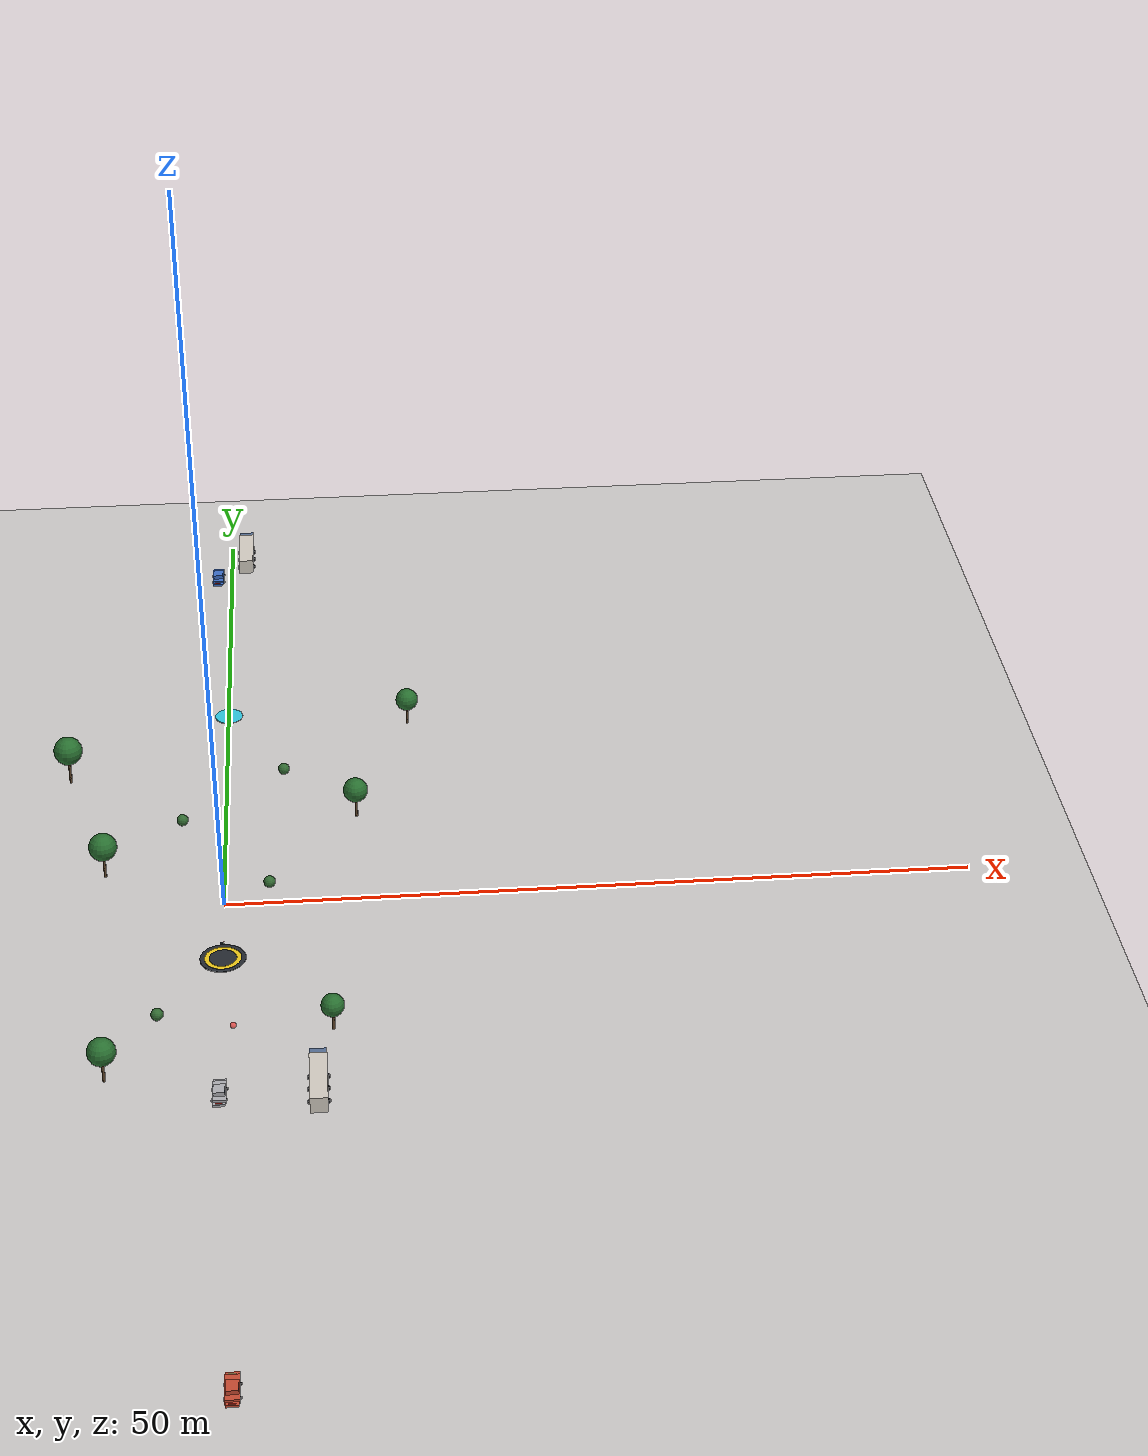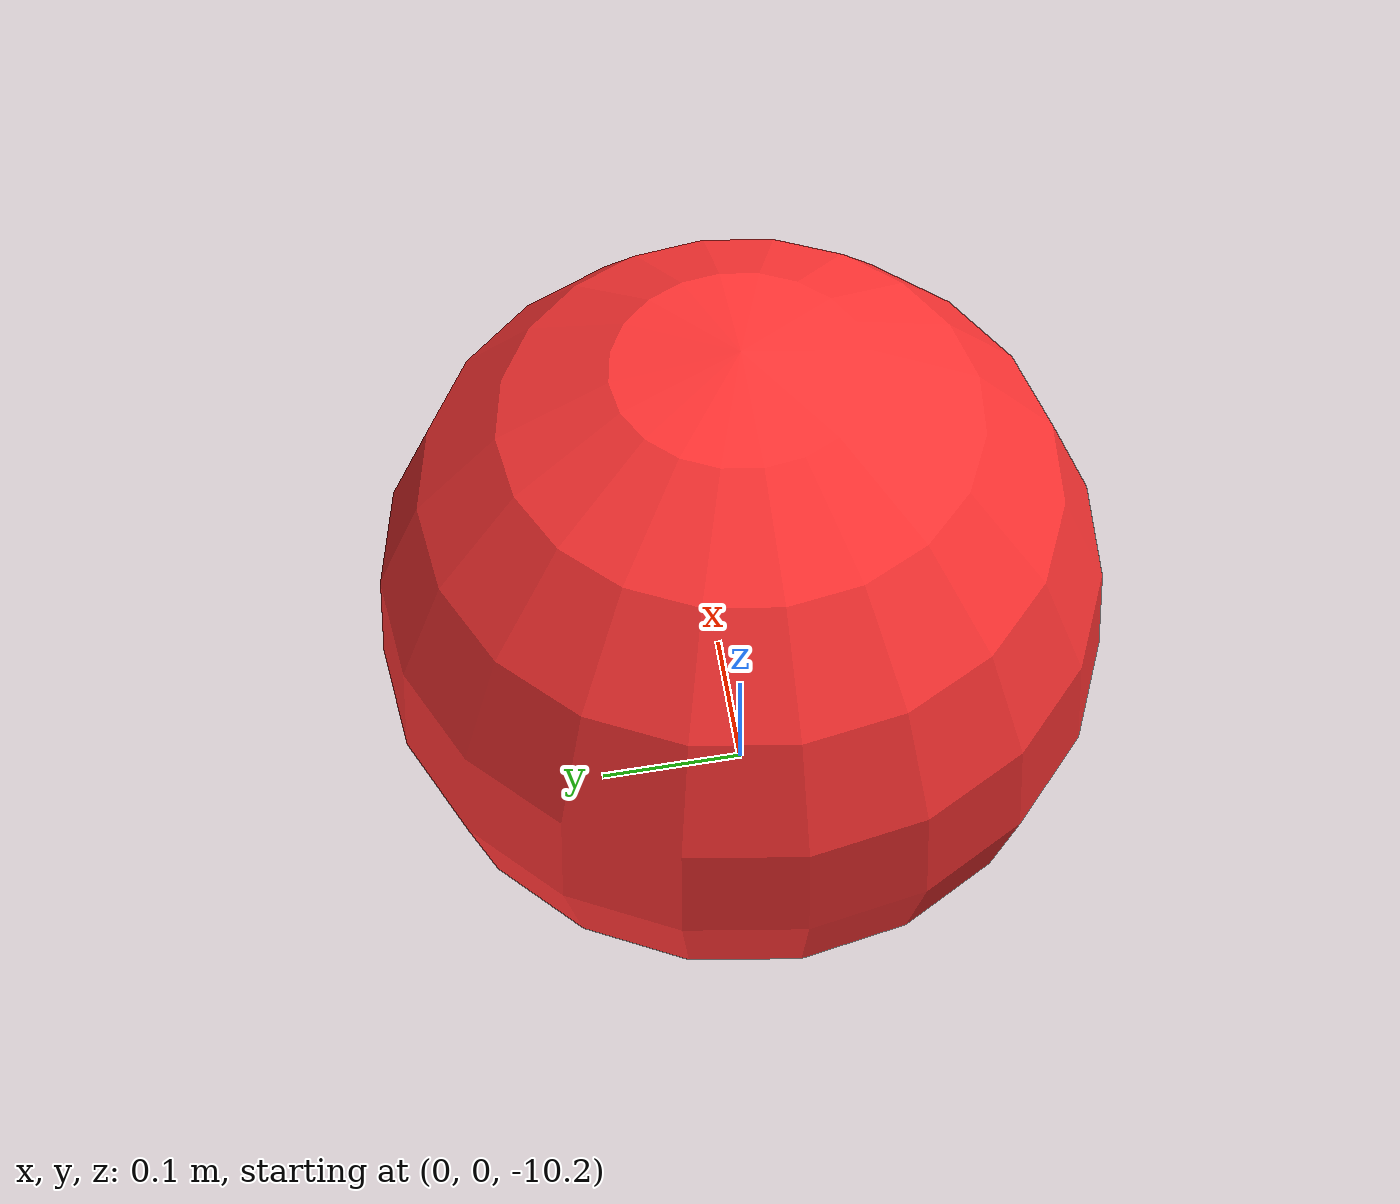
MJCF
<mujoco model="paper_drone_open_field_v1">
  <option timestep="1e-4" gravity="0 0 -9.81" integrator="implicitfast"/>
  <visual>
    <headlight ambient="0.4 0.4 0.4" diffuse="0.6 0.6 0.6" specular="0.12 0.12 0.12"/>
    <global offwidth="1920" offheight="1080"/>
    <map znear="0.01" zfar="120"/>
  </visual>
  <asset>
    <texture type="skybox" builtin="gradient" rgb1="0.5 0.6 0.78" rgb2="0.92 0.93 0.96" width="256" height="256"/>
    <texture name="groundtex" type="2d" builtin="checker" rgb1="0.28 0.42 0.24" rgb2="0.34 0.48 0.28" width="200" height="200"/>
    <material name="groundmat" texture="groundtex" texrepeat="14 14" specular="0.05"/>
  </asset>
  <worldbody>
    <light directional="true" castshadow="true" pos="6 6 14" dir="0 0 -1"/>
    <light directional="true" pos="-8 -6 10" dir="0.3 0.2 -1" diffuse="0.25 0.27 0.3"/>
    <geom name="floor" type="plane" size="60 60 0.1" material="groundmat" rgba="0.7 0.75 0.7 1" friction="1.0 0.5 0.5"/>
    <geom name="pad_base" type="cylinder" size="1.5 0.02" pos="0 -6 0.02" rgba="0.15 0.17 0.2 1" friction="1 0.5 0.5"/>
    <geom name="pad_ring" type="cylinder" size="1.2 0.025" pos="0 -6 0.026" rgba="0.95 0.8 0.1 1" contype="0" conaffinity="0"/>
    <geom name="pad_inner" type="cylinder" size="0.9 0.028" pos="0 -6 0.028" rgba="0.15 0.17 0.2 1" contype="0" conaffinity="0"/>
    <geom name="land_ring" type="cylinder" size="1.0 0.025" pos="0 24 0.026" rgba="0.2 0.8 0.9 1" contype="0" conaffinity="0"/>
    <geom name="tree_0_trunk" type="cylinder" size="0.09 1.6" pos="-8 4 1.6" rgba="0.36 0.26 0.16 1" friction="1 0.5 0.5"/>
    <geom name="tree_0_top" type="sphere" size="0.95" pos="-8 4 2.4075" rgba="0.16 0.44 0.19 1" friction="1 0.5 0.5"/>
    <geom name="tree_1_trunk" type="cylinder" size="0.09 1.4" pos="9 10 1.4" rgba="0.36 0.26 0.16 1" friction="1 0.5 0.5"/>
    <geom name="tree_1_top" type="sphere" size="0.85" pos="9 10 2.1224999999999996" rgba="0.16 0.44 0.19 1" friction="1 0.5 0.5"/>
    <geom name="tree_2_trunk" type="cylinder" size="0.09 1.8" pos="-11 16 1.8" rgba="0.36 0.26 0.16 1" friction="1 0.5 0.5"/>
    <geom name="tree_2_top" type="sphere" size="1.0" pos="-11 16 2.65" rgba="0.16 0.44 0.19 1" friction="1 0.5 0.5"/>
    <geom name="tree_3_trunk" type="cylinder" size="0.09 1.2" pos="7 -14 1.2" rgba="0.36 0.26 0.16 1" friction="1 0.5 0.5"/>
    <geom name="tree_3_top" type="sphere" size="0.75" pos="7 -14 1.8375" rgba="0.16 0.44 0.19 1" friction="1 0.5 0.5"/>
    <geom name="tree_4_trunk" type="cylinder" size="0.09 1.5" pos="-7 -18 1.5" rgba="0.36 0.26 0.16 1" friction="1 0.5 0.5"/>
    <geom name="tree_4_top" type="sphere" size="0.9" pos="-7 -18 2.265" rgba="0.16 0.44 0.19 1" friction="1 0.5 0.5"/>
    <geom name="tree_5_trunk" type="cylinder" size="0.09 1.3" pos="13 22 1.3" rgba="0.36 0.26 0.16 1" friction="1 0.5 0.5"/>
    <geom name="tree_5_top" type="sphere" size="0.8" pos="13 22 1.98" rgba="0.16 0.44 0.19 1" friction="1 0.5 0.5"/>
    <geom name="bush_0" type="sphere" size="0.4" pos="3 2 0.32" rgba="0.2 0.42 0.2 1" contype="0" conaffinity="0"/>
    <geom name="bush_1" type="sphere" size="0.4" pos="-3 10 0.32" rgba="0.2 0.42 0.2 1" contype="0" conaffinity="0"/>
    <geom name="bush_2" type="sphere" size="0.4" pos="4 16 0.32" rgba="0.2 0.42 0.2 1" contype="0" conaffinity="0"/>
    <geom name="bush_3" type="sphere" size="0.4" pos="-4 -12 0.32" rgba="0.2 0.42 0.2 1" contype="0" conaffinity="0"/>
  <body name="car_1" pos="0 -20 0">
    <freejoint name="car_1_j"/>
    <geom name="car_1" type="box" size="0.42 0.95 0.16" pos="0 0 0.25" rgba="0.7 0.7 0.72 1" euler="0 0 0" friction="1 0.5 0.5"/>
    <geom name="car_1_hood" type="box" size="0.378 0.209 0.08" pos="0 1.05 0.194" rgba="0.7 0.7 0.72 1" euler="0 0 0" contype="0" conaffinity="0" friction="1 0.5 0.5"/>
    <geom name="car_1_trunk" type="box" size="0.378 0.17099999999999999 0.08" pos="0 -1.03 0.194" rgba="0.7 0.7 0.72 1" euler="0 0 0" contype="0" conaffinity="0" friction="1 0.5 0.5"/>
    <geom name="car_1_cabin" type="box" size="0.36 0.42 0.14" pos="0 -0.1425 0.55" rgba="0.7 0.7 0.72 1" euler="0 0 0" contype="0" conaffinity="0" friction="1 0.5 0.5"/>
    <geom name="car_1_glass" type="box" size="0.36719999999999997 0.336 0.07700000000000001" pos="0 -0.1425 0.543" rgba="0.15 0.2 0.28 0.85" euler="0 0 0" contype="0" conaffinity="0" friction="1 0.5 0.5"/>
    <geom name="car_1_w0" type="cylinder" size="0.09 0.06" pos="0.42 0.5225 0.09" rgba="0.08 0.08 0.09 1" euler="90 0 0" contype="0" conaffinity="0" friction="1 0.5 0.5"/>
    <geom name="car_1_w1" type="cylinder" size="0.09 0.06" pos="0.42 -0.5225 0.09" rgba="0.08 0.08 0.09 1" euler="90 0 0" contype="0" conaffinity="0" friction="1 0.5 0.5"/>
    <geom name="car_1_w2" type="cylinder" size="0.09 0.06" pos="-0.42 0.5225 0.09" rgba="0.08 0.08 0.09 1" euler="90 0 0" contype="0" conaffinity="0" friction="1 0.5 0.5"/>
    <geom name="car_1_w3" type="cylinder" size="0.09 0.06" pos="-0.42 -0.5225 0.09" rgba="0.08 0.08 0.09 1" euler="90 0 0" contype="0" conaffinity="0" friction="1 0.5 0.5"/>
    <geom name="car_1_hl" type="box" size="0.21 0.04 0.04" pos="0 1.1099999999999999 0.25" rgba="1 0.95 0.6 1" contype="0" conaffinity="0" friction="1 0.5 0.5"/>
    <geom name="car_1_tl" type="box" size="0.21 0.04 0.04" pos="0 -1.1099999999999999 0.25" rgba="0.9 0.15 0.1 1" contype="0" conaffinity="0" friction="1 0.5 0.5"/>
  </body>
  <body name="truck_1" pos="6 -20 0">
    <freejoint name="truck_1_j"/>
    <geom name="truck_1" type="box" size="0.55 2.1999999999999997 0.55" pos="0 -0.075 0.68" rgba="0.85 0.82 0.78 1" euler="0 0 0" friction="1 0.5 0.5"/>
    <geom name="truck_1_cab" type="box" size="0.52 0.5 0.5" pos="0 2.17 0.63" rgba="0.35 0.45 0.6 1" euler="0 0 0" contype="0" conaffinity="0" friction="1 0.5 0.5"/>
    <geom name="truck_1_cabglass" type="box" size="0.468 0.15 0.275" pos="0 2.275 0.755" rgba="0.15 0.2 0.28 0.85" euler="0 0 0" contype="0" conaffinity="0" friction="1 0.5 0.5"/>
    <geom name="truck_1_box" type="box" size="0.539 1.55 0.528" pos="0 -0.175 0.68" rgba="0.85 0.82 0.78 1" euler="0 0 0" contype="0" conaffinity="0" friction="1 0.5 0.5"/>
    <geom name="truck_1_rib0" type="box" size="0.55 0.015 0.12" pos="0 -1.075 0.68" rgba="0.35 0.45 0.6 1" euler="0 0 0" contype="0" conaffinity="0" friction="1 0.5 0.5"/>
    <geom name="truck_1_rib1" type="box" size="0.55 0.015 0.12" pos="0 -0.175 0.68" rgba="0.35 0.45 0.6 1" euler="0 0 0" contype="0" conaffinity="0" friction="1 0.5 0.5"/>
    <geom name="truck_1_rib2" type="box" size="0.55 0.015 0.12" pos="0 0.7250000000000001 0.68" rgba="0.35 0.45 0.6 1" euler="0 0 0" contype="0" conaffinity="0" friction="1 0.5 0.5"/>
    <geom name="truck_1_w0r" type="cylinder" size="0.13 0.08" pos="0.5700000000000001 1.1625 0.13" rgba="0.08 0.08 0.09 1" euler="90 0 0" contype="0" conaffinity="0" friction="1 0.5 0.5"/>
    <geom name="truck_1_w0l" type="cylinder" size="0.13 0.08" pos="-0.5700000000000001 1.1625 0.13" rgba="0.08 0.08 0.09 1" euler="90 0 0" contype="0" conaffinity="0" friction="1 0.5 0.5"/>
    <geom name="truck_1_w1r" type="cylinder" size="0.13 0.08" pos="0.5700000000000001 0.0 0.13" rgba="0.08 0.08 0.09 1" euler="90 0 0" contype="0" conaffinity="0" friction="1 0.5 0.5"/>
    <geom name="truck_1_w1l" type="cylinder" size="0.13 0.08" pos="-0.5700000000000001 0.0 0.13" rgba="0.08 0.08 0.09 1" euler="90 0 0" contype="0" conaffinity="0" friction="1 0.5 0.5"/>
    <geom name="truck_1_w2r" type="cylinder" size="0.13 0.08" pos="0.5700000000000001 -1.2400000000000002 0.13" rgba="0.08 0.08 0.09 1" euler="90 0 0" contype="0" conaffinity="0" friction="1 0.5 0.5"/>
    <geom name="truck_1_w2l" type="cylinder" size="0.13 0.08" pos="-0.5700000000000001 -1.2400000000000002 0.13" rgba="0.08 0.08 0.09 1" euler="90 0 0" contype="0" conaffinity="0" friction="1 0.5 0.5"/>
    <geom name="truck_1_hl" type="box" size="0.08 0.04 0.05" pos="0 2.5999999999999996 0.48" rgba="1 0.95 0.6 1" contype="0" conaffinity="0" friction="1 0.5 0.5"/>
  </body>
  <body name="car_m1" pos="1.1 -45 0">
    <freejoint name="car_m1_j"/>
    <geom name="car_m1" type="box" size="0.42 0.95 0.16" pos="0 0 0.25" rgba="0.8 0.3 0.2 1" euler="0 0 0" friction="1 0.5 0.5"/>
    <geom name="car_m1_hood" type="box" size="0.378 0.209 0.08" pos="0 1.05 0.194" rgba="0.8 0.3 0.2 1" euler="0 0 0" contype="0" conaffinity="0" friction="1 0.5 0.5"/>
    <geom name="car_m1_trunk" type="box" size="0.378 0.17099999999999999 0.08" pos="0 -1.03 0.194" rgba="0.8 0.3 0.2 1" euler="0 0 0" contype="0" conaffinity="0" friction="1 0.5 0.5"/>
    <geom name="car_m1_cabin" type="box" size="0.36 0.42 0.14" pos="0 -0.1425 0.55" rgba="0.8 0.3 0.2 1" euler="0 0 0" contype="0" conaffinity="0" friction="1 0.5 0.5"/>
    <geom name="car_m1_glass" type="box" size="0.36719999999999997 0.336 0.07700000000000001" pos="0 -0.1425 0.543" rgba="0.15 0.2 0.28 0.85" euler="0 0 0" contype="0" conaffinity="0" friction="1 0.5 0.5"/>
    <geom name="car_m1_w0" type="cylinder" size="0.09 0.06" pos="0.42 0.5225 0.09" rgba="0.08 0.08 0.09 1" euler="90 0 0" contype="0" conaffinity="0" friction="1 0.5 0.5"/>
    <geom name="car_m1_w1" type="cylinder" size="0.09 0.06" pos="0.42 -0.5225 0.09" rgba="0.08 0.08 0.09 1" euler="90 0 0" contype="0" conaffinity="0" friction="1 0.5 0.5"/>
    <geom name="car_m1_w2" type="cylinder" size="0.09 0.06" pos="-0.42 0.5225 0.09" rgba="0.08 0.08 0.09 1" euler="90 0 0" contype="0" conaffinity="0" friction="1 0.5 0.5"/>
    <geom name="car_m1_w3" type="cylinder" size="0.09 0.06" pos="-0.42 -0.5225 0.09" rgba="0.08 0.08 0.09 1" euler="90 0 0" contype="0" conaffinity="0" friction="1 0.5 0.5"/>
    <geom name="car_m1_hl" type="box" size="0.21 0.04 0.04" pos="0 1.1099999999999999 0.25" rgba="1 0.95 0.6 1" contype="0" conaffinity="0" friction="1 0.5 0.5"/>
    <geom name="car_m1_tl" type="box" size="0.21 0.04 0.04" pos="0 -1.1099999999999999 0.25" rgba="0.9 0.15 0.1 1" contype="0" conaffinity="0" friction="1 0.5 0.5"/>
  </body>
  <body name="car_m2" pos="-1.1 45 0">
    <freejoint name="car_m2_j"/>
    <geom name="car_m2" type="box" size="0.42 0.95 0.16" pos="0 0 0.25" rgba="0.25 0.45 0.8 1" euler="0 0 180" friction="1 0.5 0.5"/>
    <geom name="car_m2_hood" type="box" size="0.378 0.209 0.08" pos="0 1.05 0.194" rgba="0.25 0.45 0.8 1" euler="0 0 180" contype="0" conaffinity="0" friction="1 0.5 0.5"/>
    <geom name="car_m2_trunk" type="box" size="0.378 0.17099999999999999 0.08" pos="0 -1.03 0.194" rgba="0.25 0.45 0.8 1" euler="0 0 180" contype="0" conaffinity="0" friction="1 0.5 0.5"/>
    <geom name="car_m2_cabin" type="box" size="0.36 0.42 0.14" pos="0 -0.1425 0.55" rgba="0.25 0.45 0.8 1" euler="0 0 180" contype="0" conaffinity="0" friction="1 0.5 0.5"/>
    <geom name="car_m2_glass" type="box" size="0.36719999999999997 0.336 0.07700000000000001" pos="0 -0.1425 0.543" rgba="0.15 0.2 0.28 0.85" euler="0 0 180" contype="0" conaffinity="0" friction="1 0.5 0.5"/>
    <geom name="car_m2_w0" type="cylinder" size="0.09 0.06" pos="0.42 0.5225 0.09" rgba="0.08 0.08 0.09 1" euler="90 0 0" contype="0" conaffinity="0" friction="1 0.5 0.5"/>
    <geom name="car_m2_w1" type="cylinder" size="0.09 0.06" pos="0.42 -0.5225 0.09" rgba="0.08 0.08 0.09 1" euler="90 0 0" contype="0" conaffinity="0" friction="1 0.5 0.5"/>
    <geom name="car_m2_w2" type="cylinder" size="0.09 0.06" pos="-0.42 0.5225 0.09" rgba="0.08 0.08 0.09 1" euler="90 0 0" contype="0" conaffinity="0" friction="1 0.5 0.5"/>
    <geom name="car_m2_w3" type="cylinder" size="0.09 0.06" pos="-0.42 -0.5225 0.09" rgba="0.08 0.08 0.09 1" euler="90 0 0" contype="0" conaffinity="0" friction="1 0.5 0.5"/>
    <geom name="car_m2_hl" type="box" size="0.21 0.04 0.04" pos="0 1.1099999999999999 0.25" rgba="1 0.95 0.6 1" contype="0" conaffinity="0" friction="1 0.5 0.5"/>
    <geom name="car_m2_tl" type="box" size="0.21 0.04 0.04" pos="0 -1.1099999999999999 0.25" rgba="0.9 0.15 0.1 1" contype="0" conaffinity="0" friction="1 0.5 0.5"/>
  </body>
  <body name="truck_m1" pos="1.1 48 0">
    <freejoint name="truck_m1_j"/>
    <geom name="truck_m1" type="box" size="0.55 2.1999999999999997 0.55" pos="0 -0.075 0.68" rgba="0.85 0.82 0.78 1" euler="0 0 0" friction="1 0.5 0.5"/>
    <geom name="truck_m1_cab" type="box" size="0.52 0.5 0.5" pos="0 2.17 0.63" rgba="0.35 0.45 0.6 1" euler="0 0 0" contype="0" conaffinity="0" friction="1 0.5 0.5"/>
    <geom name="truck_m1_cabglass" type="box" size="0.468 0.15 0.275" pos="0 2.275 0.755" rgba="0.15 0.2 0.28 0.85" euler="0 0 0" contype="0" conaffinity="0" friction="1 0.5 0.5"/>
    <geom name="truck_m1_box" type="box" size="0.539 1.55 0.528" pos="0 -0.175 0.68" rgba="0.85 0.82 0.78 1" euler="0 0 0" contype="0" conaffinity="0" friction="1 0.5 0.5"/>
    <geom name="truck_m1_rib0" type="box" size="0.55 0.015 0.12" pos="0 -1.075 0.68" rgba="0.35 0.45 0.6 1" euler="0 0 0" contype="0" conaffinity="0" friction="1 0.5 0.5"/>
    <geom name="truck_m1_rib1" type="box" size="0.55 0.015 0.12" pos="0 -0.175 0.68" rgba="0.35 0.45 0.6 1" euler="0 0 0" contype="0" conaffinity="0" friction="1 0.5 0.5"/>
    <geom name="truck_m1_rib2" type="box" size="0.55 0.015 0.12" pos="0 0.7250000000000001 0.68" rgba="0.35 0.45 0.6 1" euler="0 0 0" contype="0" conaffinity="0" friction="1 0.5 0.5"/>
    <geom name="truck_m1_w0r" type="cylinder" size="0.13 0.08" pos="0.5700000000000001 1.1625 0.13" rgba="0.08 0.08 0.09 1" euler="90 0 0" contype="0" conaffinity="0" friction="1 0.5 0.5"/>
    <geom name="truck_m1_w0l" type="cylinder" size="0.13 0.08" pos="-0.5700000000000001 1.1625 0.13" rgba="0.08 0.08 0.09 1" euler="90 0 0" contype="0" conaffinity="0" friction="1 0.5 0.5"/>
    <geom name="truck_m1_w1r" type="cylinder" size="0.13 0.08" pos="0.5700000000000001 0.0 0.13" rgba="0.08 0.08 0.09 1" euler="90 0 0" contype="0" conaffinity="0" friction="1 0.5 0.5"/>
    <geom name="truck_m1_w1l" type="cylinder" size="0.13 0.08" pos="-0.5700000000000001 0.0 0.13" rgba="0.08 0.08 0.09 1" euler="90 0 0" contype="0" conaffinity="0" friction="1 0.5 0.5"/>
    <geom name="truck_m1_w2r" type="cylinder" size="0.13 0.08" pos="0.5700000000000001 -1.2400000000000002 0.13" rgba="0.08 0.08 0.09 1" euler="90 0 0" contype="0" conaffinity="0" friction="1 0.5 0.5"/>
    <geom name="truck_m1_w2l" type="cylinder" size="0.13 0.08" pos="-0.5700000000000001 -1.2400000000000002 0.13" rgba="0.08 0.08 0.09 1" euler="90 0 0" contype="0" conaffinity="0" friction="1 0.5 0.5"/>
    <geom name="truck_m1_hl" type="box" size="0.08 0.04 0.05" pos="0 2.5999999999999996 0.48" rgba="1 0.95 0.6 1" contype="0" conaffinity="0" friction="1 0.5 0.5"/>
  </body>

    <!-- the exact paper drone (mass/inertia = benchmark values) -->
    <body name="quadrotor" pos="0 -6 1.2">
      <freejoint name="root"/>
      <inertial pos="0 0 0" mass="0.2" diaginertia="6.5e-4 6.5e-4 1.2e-3"/>
      <geom name="frame" type="box" size="0.17 0.17 0.015" group="3" friction="0.8 0.5 0.5"/>
      <geom name="shell" type="ellipsoid" size="0.085 0.085 0.028" pos="0 0 0.018" rgba="0.22 0.24 0.28 1" contype="0" conaffinity="0"/>
      <geom name="plate" type="cylinder" size="0.09 0.008" pos="0 0 -0.004" rgba="0.15 0.16 0.18 1" contype="0" conaffinity="0"/>
      <geom name="arm1" type="box" size="0.075 0.007 0.005" euler="0 0 45" pos="0.053033 0.053033 0" rgba="0.28 0.3 0.34 1" contype="0" conaffinity="0"/>
      <geom name="arm2" type="box" size="0.075 0.007 0.005" euler="0 0 -45" pos="-0.053033 -0.053033 0" rgba="0.28 0.3 0.34 1" contype="0" conaffinity="0"/>
      <geom name="arm3" type="box" size="0.075 0.007 0.005" euler="0 0 -45" pos="0.053033 -0.053033 0" rgba="0.28 0.3 0.34 1" contype="0" conaffinity="0"/>
      <geom name="arm4" type="box" size="0.075 0.007 0.005" euler="0 0 45" pos="-0.053033 0.053033 0" rgba="0.28 0.3 0.34 1" contype="0" conaffinity="0"/>
      <geom name="cam" type="box" size="0.014 0.01 0.008" pos="0.098 0 0.02" rgba="0.1 0.1 0.1 1" contype="0" conaffinity="0"/>
      <geom name="lens" type="cylinder" size="0.004 0.006" euler="0 90 0" pos="0.113 0 0.02" rgba="0.05 0.08 0.12 1" contype="0" conaffinity="0"/>
      <geom name="led" type="sphere" size="0.006" pos="-0.095 0 0.02" rgba="1 0.1 0.1 1" contype="0" conaffinity="0"/>
      <geom name="mount1" type="cylinder" size="0.011 0.012" pos="0.106066 0.106066 0.014" rgba="0.18 0.18 0.2 1" contype="0" conaffinity="0"/>
      <geom name="mount2" type="cylinder" size="0.011 0.012" pos="-0.106066 -0.106066 0.014" rgba="0.18 0.18 0.2 1" contype="0" conaffinity="0"/>
      <geom name="mount3" type="cylinder" size="0.011 0.012" pos="0.106066 -0.106066 0.014" rgba="0.18 0.18 0.2 1" contype="0" conaffinity="0"/>
      <geom name="mount4" type="cylinder" size="0.011 0.012" pos="-0.106066 0.106066 0.014" rgba="0.18 0.18 0.2 1" contype="0" conaffinity="0"/>
      <geom name="prop1" type="cylinder" size="0.045 0.0012" pos="0.106066 0.106066 0.03" rgba="0.9 0.2 0.2 0.32" contype="0" conaffinity="0"/>
      <geom name="prop2" type="cylinder" size="0.045 0.0012" pos="-0.106066 -0.106066 0.03" rgba="0.2 0.25 0.9 0.32" contype="0" conaffinity="0"/>
      <geom name="prop3" type="cylinder" size="0.045 0.0012" pos="0.106066 -0.106066 0.03" rgba="0.2 0.8 0.25 0.32" contype="0" conaffinity="0"/>
      <geom name="prop4" type="cylinder" size="0.045 0.0012" pos="-0.106066 0.106066 0.03" rgba="0.95 0.85 0.2 0.32" contype="0" conaffinity="0"/>
    </body>

    <!-- path visualization pool (moved by the app; visual only) -->
    <geom name="mk_d0" type="sphere" size="0.07" pos="0 0 -10" rgba="1 0.85 0.2 0.9" contype="0" conaffinity="0"/>
    <geom name="mk_d1" type="sphere" size="0.07" pos="0 0 -10" rgba="1 0.85 0.2 0.9" contype="0" conaffinity="0"/>
    <geom name="mk_d2" type="sphere" size="0.07" pos="0 0 -10" rgba="1 0.85 0.2 0.9" contype="0" conaffinity="0"/>
    <geom name="mk_d3" type="sphere" size="0.07" pos="0 0 -10" rgba="1 0.85 0.2 0.9" contype="0" conaffinity="0"/>
    <geom name="mk_d4" type="sphere" size="0.07" pos="0 0 -10" rgba="1 0.85 0.2 0.9" contype="0" conaffinity="0"/>
    <geom name="mk_d5" type="sphere" size="0.07" pos="0 0 -10" rgba="1 0.85 0.2 0.9" contype="0" conaffinity="0"/>
    <geom name="mk_d6" type="sphere" size="0.07" pos="0 0 -10" rgba="1 0.85 0.2 0.9" contype="0" conaffinity="0"/>
    <geom name="mk_d7" type="sphere" size="0.07" pos="0 0 -10" rgba="1 0.85 0.2 0.9" contype="0" conaffinity="0"/>
    <geom name="mk_d8" type="sphere" size="0.07" pos="0 0 -10" rgba="1 0.85 0.2 0.9" contype="0" conaffinity="0"/>
    <geom name="mk_d9" type="sphere" size="0.07" pos="0 0 -10" rgba="1 0.85 0.2 0.9" contype="0" conaffinity="0"/>
    <geom name="mk_d10" type="sphere" size="0.07" pos="0 0 -10" rgba="1 0.85 0.2 0.9" contype="0" conaffinity="0"/>
    <geom name="mk_d11" type="sphere" size="0.07" pos="0 0 -10" rgba="1 0.85 0.2 0.9" contype="0" conaffinity="0"/>
    <geom name="mk_d12" type="sphere" size="0.07" pos="0 0 -10" rgba="1 0.85 0.2 0.9" contype="0" conaffinity="0"/>
    <geom name="mk_d13" type="sphere" size="0.07" pos="0 0 -10" rgba="1 0.85 0.2 0.9" contype="0" conaffinity="0"/>
    <geom name="mk_d14" type="sphere" size="0.07" pos="0 0 -10" rgba="1 0.85 0.2 0.9" contype="0" conaffinity="0"/>
    <geom name="mk_d15" type="sphere" size="0.07" pos="0 0 -10" rgba="1 0.85 0.2 0.9" contype="0" conaffinity="0"/>
    <geom name="mk_d16" type="sphere" size="0.07" pos="0 0 -10" rgba="1 0.85 0.2 0.9" contype="0" conaffinity="0"/>
    <geom name="mk_d17" type="sphere" size="0.07" pos="0 0 -10" rgba="1 0.85 0.2 0.9" contype="0" conaffinity="0"/>
    <geom name="mk_d18" type="sphere" size="0.07" pos="0 0 -10" rgba="1 0.85 0.2 0.9" contype="0" conaffinity="0"/>
    <geom name="mk_d19" type="sphere" size="0.07" pos="0 0 -10" rgba="1 0.85 0.2 0.9" contype="0" conaffinity="0"/>
    <geom name="mk_d20" type="sphere" size="0.07" pos="0 0 -10" rgba="1 0.85 0.2 0.9" contype="0" conaffinity="0"/>
    <geom name="mk_d21" type="sphere" size="0.07" pos="0 0 -10" rgba="1 0.85 0.2 0.9" contype="0" conaffinity="0"/>
    <geom name="mk_d22" type="sphere" size="0.07" pos="0 0 -10" rgba="1 0.85 0.2 0.9" contype="0" conaffinity="0"/>
    <geom name="mk_d23" type="sphere" size="0.07" pos="0 0 -10" rgba="1 0.85 0.2 0.9" contype="0" conaffinity="0"/>
    <geom name="mk_d24" type="sphere" size="0.07" pos="0 0 -10" rgba="1 0.85 0.2 0.9" contype="0" conaffinity="0"/>
    <geom name="mk_d25" type="sphere" size="0.07" pos="0 0 -10" rgba="1 0.85 0.2 0.9" contype="0" conaffinity="0"/>
    <geom name="mk_d26" type="sphere" size="0.07" pos="0 0 -10" rgba="1 0.85 0.2 0.9" contype="0" conaffinity="0"/>
    <geom name="mk_d27" type="sphere" size="0.07" pos="0 0 -10" rgba="1 0.85 0.2 0.9" contype="0" conaffinity="0"/>
    <geom name="mk_d28" type="sphere" size="0.07" pos="0 0 -10" rgba="1 0.85 0.2 0.9" contype="0" conaffinity="0"/>
    <geom name="mk_d29" type="sphere" size="0.07" pos="0 0 -10" rgba="1 0.85 0.2 0.9" contype="0" conaffinity="0"/>
    <geom name="mk_d30" type="sphere" size="0.07" pos="0 0 -10" rgba="1 0.85 0.2 0.9" contype="0" conaffinity="0"/>
    <geom name="mk_d31" type="sphere" size="0.07" pos="0 0 -10" rgba="1 0.85 0.2 0.9" contype="0" conaffinity="0"/>
    <geom name="mk_d32" type="sphere" size="0.07" pos="0 0 -10" rgba="1 0.85 0.2 0.9" contype="0" conaffinity="0"/>
    <geom name="mk_d33" type="sphere" size="0.07" pos="0 0 -10" rgba="1 0.85 0.2 0.9" contype="0" conaffinity="0"/>
    <geom name="mk_d34" type="sphere" size="0.07" pos="0 0 -10" rgba="1 0.85 0.2 0.9" contype="0" conaffinity="0"/>
    <geom name="mk_d35" type="sphere" size="0.07" pos="0 0 -10" rgba="1 0.85 0.2 0.9" contype="0" conaffinity="0"/>
    <geom name="mk_d36" type="sphere" size="0.07" pos="0 0 -10" rgba="1 0.85 0.2 0.9" contype="0" conaffinity="0"/>
    <geom name="mk_d37" type="sphere" size="0.07" pos="0 0 -10" rgba="1 0.85 0.2 0.9" contype="0" conaffinity="0"/>
    <geom name="mk_d38" type="sphere" size="0.07" pos="0 0 -10" rgba="1 0.85 0.2 0.9" contype="0" conaffinity="0"/>
    <geom name="mk_d39" type="sphere" size="0.07" pos="0 0 -10" rgba="1 0.85 0.2 0.9" contype="0" conaffinity="0"/>
    <geom name="mk_d40" type="sphere" size="0.07" pos="0 0 -10" rgba="1 0.85 0.2 0.9" contype="0" conaffinity="0"/>
    <geom name="mk_d41" type="sphere" size="0.07" pos="0 0 -10" rgba="1 0.85 0.2 0.9" contype="0" conaffinity="0"/>
    <geom name="mk_d42" type="sphere" size="0.07" pos="0 0 -10" rgba="1 0.85 0.2 0.9" contype="0" conaffinity="0"/>
    <geom name="mk_d43" type="sphere" size="0.07" pos="0 0 -10" rgba="1 0.85 0.2 0.9" contype="0" conaffinity="0"/>
    <geom name="mk_d44" type="sphere" size="0.07" pos="0 0 -10" rgba="1 0.85 0.2 0.9" contype="0" conaffinity="0"/>
    <geom name="mk_d45" type="sphere" size="0.07" pos="0 0 -10" rgba="1 0.85 0.2 0.9" contype="0" conaffinity="0"/>
    <geom name="mk_d46" type="sphere" size="0.07" pos="0 0 -10" rgba="1 0.85 0.2 0.9" contype="0" conaffinity="0"/>
    <geom name="mk_d47" type="sphere" size="0.07" pos="0 0 -10" rgba="1 0.85 0.2 0.9" contype="0" conaffinity="0"/>
    <geom name="mk_d48" type="sphere" size="0.07" pos="0 0 -10" rgba="1 0.85 0.2 0.9" contype="0" conaffinity="0"/>
    <geom name="mk_d49" type="sphere" size="0.07" pos="0 0 -10" rgba="1 0.85 0.2 0.9" contype="0" conaffinity="0"/>
    <geom name="mk_d50" type="sphere" size="0.07" pos="0 0 -10" rgba="1 0.85 0.2 0.9" contype="0" conaffinity="0"/>
    <geom name="mk_d51" type="sphere" size="0.07" pos="0 0 -10" rgba="1 0.85 0.2 0.9" contype="0" conaffinity="0"/>
    <geom name="mk_d52" type="sphere" size="0.07" pos="0 0 -10" rgba="1 0.85 0.2 0.9" contype="0" conaffinity="0"/>
    <geom name="mk_d53" type="sphere" size="0.07" pos="0 0 -10" rgba="1 0.85 0.2 0.9" contype="0" conaffinity="0"/>
    <geom name="mk_d54" type="sphere" size="0.07" pos="0 0 -10" rgba="1 0.85 0.2 0.9" contype="0" conaffinity="0"/>
    <geom name="mk_d55" type="sphere" size="0.07" pos="0 0 -10" rgba="1 0.85 0.2 0.9" contype="0" conaffinity="0"/>
    <geom name="mk_d56" type="sphere" size="0.07" pos="0 0 -10" rgba="1 0.85 0.2 0.9" contype="0" conaffinity="0"/>
    <geom name="mk_d57" type="sphere" size="0.07" pos="0 0 -10" rgba="1 0.85 0.2 0.9" contype="0" conaffinity="0"/>
    <geom name="mk_d58" type="sphere" size="0.07" pos="0 0 -10" rgba="1 0.85 0.2 0.9" contype="0" conaffinity="0"/>
    <geom name="mk_d59" type="sphere" size="0.07" pos="0 0 -10" rgba="1 0.85 0.2 0.9" contype="0" conaffinity="0"/>
    <geom name="mk_d60" type="sphere" size="0.07" pos="0 0 -10" rgba="1 0.85 0.2 0.9" contype="0" conaffinity="0"/>
    <geom name="mk_d61" type="sphere" size="0.07" pos="0 0 -10" rgba="1 0.85 0.2 0.9" contype="0" conaffinity="0"/>
    <geom name="mk_d62" type="sphere" size="0.07" pos="0 0 -10" rgba="1 0.85 0.2 0.9" contype="0" conaffinity="0"/>
    <geom name="mk_d63" type="sphere" size="0.07" pos="0 0 -10" rgba="1 0.85 0.2 0.9" contype="0" conaffinity="0"/>
    <geom name="mk_d64" type="sphere" size="0.07" pos="0 0 -10" rgba="1 0.85 0.2 0.9" contype="0" conaffinity="0"/>
    <geom name="mk_d65" type="sphere" size="0.07" pos="0 0 -10" rgba="1 0.85 0.2 0.9" contype="0" conaffinity="0"/>
    <geom name="mk_d66" type="sphere" size="0.07" pos="0 0 -10" rgba="1 0.85 0.2 0.9" contype="0" conaffinity="0"/>
    <geom name="mk_d67" type="sphere" size="0.07" pos="0 0 -10" rgba="1 0.85 0.2 0.9" contype="0" conaffinity="0"/>
    <geom name="mk_d68" type="sphere" size="0.07" pos="0 0 -10" rgba="1 0.85 0.2 0.9" contype="0" conaffinity="0"/>
    <geom name="mk_d69" type="sphere" size="0.07" pos="0 0 -10" rgba="1 0.85 0.2 0.9" contype="0" conaffinity="0"/>
    <geom name="mk_d70" type="sphere" size="0.07" pos="0 0 -10" rgba="1 0.85 0.2 0.9" contype="0" conaffinity="0"/>
    <geom name="mk_d71" type="sphere" size="0.07" pos="0 0 -10" rgba="1 0.85 0.2 0.9" contype="0" conaffinity="0"/>
    <geom name="mk_d72" type="sphere" size="0.07" pos="0 0 -10" rgba="1 0.85 0.2 0.9" contype="0" conaffinity="0"/>
    <geom name="mk_d73" type="sphere" size="0.07" pos="0 0 -10" rgba="1 0.85 0.2 0.9" contype="0" conaffinity="0"/>
    <geom name="mk_d74" type="sphere" size="0.07" pos="0 0 -10" rgba="1 0.85 0.2 0.9" contype="0" conaffinity="0"/>
    <geom name="mk_d75" type="sphere" size="0.07" pos="0 0 -10" rgba="1 0.85 0.2 0.9" contype="0" conaffinity="0"/>
    <geom name="mk_d76" type="sphere" size="0.07" pos="0 0 -10" rgba="1 0.85 0.2 0.9" contype="0" conaffinity="0"/>
    <geom name="mk_d77" type="sphere" size="0.07" pos="0 0 -10" rgba="1 0.85 0.2 0.9" contype="0" conaffinity="0"/>
    <geom name="mk_d78" type="sphere" size="0.07" pos="0 0 -10" rgba="1 0.85 0.2 0.9" contype="0" conaffinity="0"/>
    <geom name="mk_d79" type="sphere" size="0.07" pos="0 0 -10" rgba="1 0.85 0.2 0.9" contype="0" conaffinity="0"/>
    <geom name="mk_d80" type="sphere" size="0.07" pos="0 0 -10" rgba="1 0.85 0.2 0.9" contype="0" conaffinity="0"/>
    <geom name="mk_d81" type="sphere" size="0.07" pos="0 0 -10" rgba="1 0.85 0.2 0.9" contype="0" conaffinity="0"/>
    <geom name="mk_d82" type="sphere" size="0.07" pos="0 0 -10" rgba="1 0.85 0.2 0.9" contype="0" conaffinity="0"/>
    <geom name="mk_d83" type="sphere" size="0.07" pos="0 0 -10" rgba="1 0.85 0.2 0.9" contype="0" conaffinity="0"/>
    <geom name="mk_d84" type="sphere" size="0.07" pos="0 0 -10" rgba="1 0.85 0.2 0.9" contype="0" conaffinity="0"/>
    <geom name="mk_d85" type="sphere" size="0.07" pos="0 0 -10" rgba="1 0.85 0.2 0.9" contype="0" conaffinity="0"/>
    <geom name="mk_d86" type="sphere" size="0.07" pos="0 0 -10" rgba="1 0.85 0.2 0.9" contype="0" conaffinity="0"/>
    <geom name="mk_d87" type="sphere" size="0.07" pos="0 0 -10" rgba="1 0.85 0.2 0.9" contype="0" conaffinity="0"/>
    <geom name="mk_d88" type="sphere" size="0.07" pos="0 0 -10" rgba="1 0.85 0.2 0.9" contype="0" conaffinity="0"/>
    <geom name="mk_d89" type="sphere" size="0.07" pos="0 0 -10" rgba="1 0.85 0.2 0.9" contype="0" conaffinity="0"/>
    <geom name="mk_d90" type="sphere" size="0.07" pos="0 0 -10" rgba="1 0.85 0.2 0.9" contype="0" conaffinity="0"/>
    <geom name="mk_d91" type="sphere" size="0.07" pos="0 0 -10" rgba="1 0.85 0.2 0.9" contype="0" conaffinity="0"/>
    <geom name="mk_d92" type="sphere" size="0.07" pos="0 0 -10" rgba="1 0.85 0.2 0.9" contype="0" conaffinity="0"/>
    <geom name="mk_d93" type="sphere" size="0.07" pos="0 0 -10" rgba="1 0.85 0.2 0.9" contype="0" conaffinity="0"/>
    <geom name="mk_d94" type="sphere" size="0.07" pos="0 0 -10" rgba="1 0.85 0.2 0.9" contype="0" conaffinity="0"/>
    <geom name="mk_d95" type="sphere" size="0.07" pos="0 0 -10" rgba="1 0.85 0.2 0.9" contype="0" conaffinity="0"/>
    <geom name="mk_w0" type="sphere" size="0.16" pos="0 0 -10" rgba="0.2 0.9 0.3 0.95" contype="0" conaffinity="0"/>
    <geom name="mk_w1" type="sphere" size="0.16" pos="0 0 -10" rgba="0.2 0.9 0.3 0.95" contype="0" conaffinity="0"/>
    <geom name="mk_w2" type="sphere" size="0.16" pos="0 0 -10" rgba="0.2 0.9 0.3 0.95" contype="0" conaffinity="0"/>
    <geom name="mk_w3" type="sphere" size="0.16" pos="0 0 -10" rgba="0.2 0.9 0.3 0.95" contype="0" conaffinity="0"/>
    <geom name="mk_w4" type="sphere" size="0.16" pos="0 0 -10" rgba="0.2 0.9 0.3 0.95" contype="0" conaffinity="0"/>
    <geom name="mk_w5" type="sphere" size="0.16" pos="0 0 -10" rgba="0.2 0.9 0.3 0.95" contype="0" conaffinity="0"/>
    <geom name="mk_w6" type="sphere" size="0.16" pos="0 0 -10" rgba="0.2 0.9 0.3 0.95" contype="0" conaffinity="0"/>
    <geom name="mk_w7" type="sphere" size="0.16" pos="0 0 -10" rgba="0.2 0.9 0.3 0.95" contype="0" conaffinity="0"/>
    <geom name="mk_w8" type="sphere" size="0.16" pos="0 0 -10" rgba="0.2 0.9 0.3 0.95" contype="0" conaffinity="0"/>
    <geom name="mk_w9" type="sphere" size="0.16" pos="0 0 -10" rgba="0.2 0.9 0.3 0.95" contype="0" conaffinity="0"/>
    <geom name="mk_w10" type="sphere" size="0.16" pos="0 0 -10" rgba="0.2 0.9 0.3 0.95" contype="0" conaffinity="0"/>
    <geom name="mk_w11" type="sphere" size="0.16" pos="0 0 -10" rgba="0.2 0.9 0.3 0.95" contype="0" conaffinity="0"/>
    <geom name="mk_w12" type="sphere" size="0.16" pos="0 0 -10" rgba="0.2 0.9 0.3 0.95" contype="0" conaffinity="0"/>
    <geom name="mk_w13" type="sphere" size="0.16" pos="0 0 -10" rgba="0.2 0.9 0.3 0.95" contype="0" conaffinity="0"/>
    <geom name="mk_w14" type="sphere" size="0.16" pos="0 0 -10" rgba="0.2 0.9 0.3 0.95" contype="0" conaffinity="0"/>
    <geom name="mk_w15" type="sphere" size="0.16" pos="0 0 -10" rgba="0.2 0.9 0.3 0.95" contype="0" conaffinity="0"/>
    <geom name="mk_w16" type="sphere" size="0.16" pos="0 0 -10" rgba="0.2 0.9 0.3 0.95" contype="0" conaffinity="0"/>
    <geom name="mk_w17" type="sphere" size="0.16" pos="0 0 -10" rgba="0.2 0.9 0.3 0.95" contype="0" conaffinity="0"/>
    <geom name="mk_w18" type="sphere" size="0.16" pos="0 0 -10" rgba="0.2 0.9 0.3 0.95" contype="0" conaffinity="0"/>
    <geom name="mk_w19" type="sphere" size="0.16" pos="0 0 -10" rgba="0.2 0.9 0.3 0.95" contype="0" conaffinity="0"/>
    <geom name="mk_w20" type="sphere" size="0.16" pos="0 0 -10" rgba="0.2 0.9 0.3 0.95" contype="0" conaffinity="0"/>
    <geom name="mk_w21" type="sphere" size="0.16" pos="0 0 -10" rgba="0.2 0.9 0.3 0.95" contype="0" conaffinity="0"/>
    <geom name="mk_w22" type="sphere" size="0.16" pos="0 0 -10" rgba="0.2 0.9 0.3 0.95" contype="0" conaffinity="0"/>
    <geom name="mk_w23" type="sphere" size="0.16" pos="0 0 -10" rgba="0.2 0.9 0.3 0.95" contype="0" conaffinity="0"/>
    <geom name="mk_target" type="sphere" size="0.22" pos="0 0 -10" rgba="1 0.2 0.2 1" contype="0" conaffinity="0"/>
    <geom name="mk_t0" type="sphere" size="0.06" pos="0 0 -10" rgba="0.2 0.5 1 0.85" contype="0" conaffinity="0"/>
    <geom name="mk_t1" type="sphere" size="0.06" pos="0 0 -10" rgba="0.2 0.5 1 0.85" contype="0" conaffinity="0"/>
    <geom name="mk_t2" type="sphere" size="0.06" pos="0 0 -10" rgba="0.2 0.5 1 0.85" contype="0" conaffinity="0"/>
    <geom name="mk_t3" type="sphere" size="0.06" pos="0 0 -10" rgba="0.2 0.5 1 0.85" contype="0" conaffinity="0"/>
    <geom name="mk_t4" type="sphere" size="0.06" pos="0 0 -10" rgba="0.2 0.5 1 0.85" contype="0" conaffinity="0"/>
    <geom name="mk_t5" type="sphere" size="0.06" pos="0 0 -10" rgba="0.2 0.5 1 0.85" contype="0" conaffinity="0"/>
    <geom name="mk_t6" type="sphere" size="0.06" pos="0 0 -10" rgba="0.2 0.5 1 0.85" contype="0" conaffinity="0"/>
    <geom name="mk_t7" type="sphere" size="0.06" pos="0 0 -10" rgba="0.2 0.5 1 0.85" contype="0" conaffinity="0"/>
    <geom name="mk_t8" type="sphere" size="0.06" pos="0 0 -10" rgba="0.2 0.5 1 0.85" contype="0" conaffinity="0"/>
    <geom name="mk_t9" type="sphere" size="0.06" pos="0 0 -10" rgba="0.2 0.5 1 0.85" contype="0" conaffinity="0"/>
    <geom name="mk_t10" type="sphere" size="0.06" pos="0 0 -10" rgba="0.2 0.5 1 0.85" contype="0" conaffinity="0"/>
    <geom name="mk_t11" type="sphere" size="0.06" pos="0 0 -10" rgba="0.2 0.5 1 0.85" contype="0" conaffinity="0"/>
    <geom name="mk_t12" type="sphere" size="0.06" pos="0 0 -10" rgba="0.2 0.5 1 0.85" contype="0" conaffinity="0"/>
    <geom name="mk_t13" type="sphere" size="0.06" pos="0 0 -10" rgba="0.2 0.5 1 0.85" contype="0" conaffinity="0"/>
    <geom name="mk_t14" type="sphere" size="0.06" pos="0 0 -10" rgba="0.2 0.5 1 0.85" contype="0" conaffinity="0"/>
    <geom name="mk_t15" type="sphere" size="0.06" pos="0 0 -10" rgba="0.2 0.5 1 0.85" contype="0" conaffinity="0"/>
    <geom name="mk_t16" type="sphere" size="0.06" pos="0 0 -10" rgba="0.2 0.5 1 0.85" contype="0" conaffinity="0"/>
    <geom name="mk_t17" type="sphere" size="0.06" pos="0 0 -10" rgba="0.2 0.5 1 0.85" contype="0" conaffinity="0"/>
    <geom name="mk_t18" type="sphere" size="0.06" pos="0 0 -10" rgba="0.2 0.5 1 0.85" contype="0" conaffinity="0"/>
    <geom name="mk_t19" type="sphere" size="0.06" pos="0 0 -10" rgba="0.2 0.5 1 0.85" contype="0" conaffinity="0"/>
    <geom name="mk_t20" type="sphere" size="0.06" pos="0 0 -10" rgba="0.2 0.5 1 0.85" contype="0" conaffinity="0"/>
    <geom name="mk_t21" type="sphere" size="0.06" pos="0 0 -10" rgba="0.2 0.5 1 0.85" contype="0" conaffinity="0"/>
    <geom name="mk_t22" type="sphere" size="0.06" pos="0 0 -10" rgba="0.2 0.5 1 0.85" contype="0" conaffinity="0"/>
    <geom name="mk_t23" type="sphere" size="0.06" pos="0 0 -10" rgba="0.2 0.5 1 0.85" contype="0" conaffinity="0"/>
    <geom name="mk_t24" type="sphere" size="0.06" pos="0 0 -10" rgba="0.2 0.5 1 0.85" contype="0" conaffinity="0"/>
    <geom name="mk_t25" type="sphere" size="0.06" pos="0 0 -10" rgba="0.2 0.5 1 0.85" contype="0" conaffinity="0"/>
    <geom name="mk_t26" type="sphere" size="0.06" pos="0 0 -10" rgba="0.2 0.5 1 0.85" contype="0" conaffinity="0"/>
    <geom name="mk_t27" type="sphere" size="0.06" pos="0 0 -10" rgba="0.2 0.5 1 0.85" contype="0" conaffinity="0"/>
    <geom name="mk_t28" type="sphere" size="0.06" pos="0 0 -10" rgba="0.2 0.5 1 0.85" contype="0" conaffinity="0"/>
    <geom name="mk_t29" type="sphere" size="0.06" pos="0 0 -10" rgba="0.2 0.5 1 0.85" contype="0" conaffinity="0"/>
    <geom name="mk_t30" type="sphere" size="0.06" pos="0 0 -10" rgba="0.2 0.5 1 0.85" contype="0" conaffinity="0"/>
    <geom name="mk_t31" type="sphere" size="0.06" pos="0 0 -10" rgba="0.2 0.5 1 0.85" contype="0" conaffinity="0"/>
    <geom name="mk_t32" type="sphere" size="0.06" pos="0 0 -10" rgba="0.2 0.5 1 0.85" contype="0" conaffinity="0"/>
    <geom name="mk_t33" type="sphere" size="0.06" pos="0 0 -10" rgba="0.2 0.5 1 0.85" contype="0" conaffinity="0"/>
    <geom name="mk_t34" type="sphere" size="0.06" pos="0 0 -10" rgba="0.2 0.5 1 0.85" contype="0" conaffinity="0"/>
    <geom name="mk_t35" type="sphere" size="0.06" pos="0 0 -10" rgba="0.2 0.5 1 0.85" contype="0" conaffinity="0"/>
    <geom name="mk_t36" type="sphere" size="0.06" pos="0 0 -10" rgba="0.2 0.5 1 0.85" contype="0" conaffinity="0"/>
    <geom name="mk_t37" type="sphere" size="0.06" pos="0 0 -10" rgba="0.2 0.5 1 0.85" contype="0" conaffinity="0"/>
    <geom name="mk_t38" type="sphere" size="0.06" pos="0 0 -10" rgba="0.2 0.5 1 0.85" contype="0" conaffinity="0"/>
    <geom name="mk_t39" type="sphere" size="0.06" pos="0 0 -10" rgba="0.2 0.5 1 0.85" contype="0" conaffinity="0"/>
    <geom name="mk_t40" type="sphere" size="0.06" pos="0 0 -10" rgba="0.2 0.5 1 0.85" contype="0" conaffinity="0"/>
    <geom name="mk_t41" type="sphere" size="0.06" pos="0 0 -10" rgba="0.2 0.5 1 0.85" contype="0" conaffinity="0"/>
    <geom name="mk_t42" type="sphere" size="0.06" pos="0 0 -10" rgba="0.2 0.5 1 0.85" contype="0" conaffinity="0"/>
    <geom name="mk_t43" type="sphere" size="0.06" pos="0 0 -10" rgba="0.2 0.5 1 0.85" contype="0" conaffinity="0"/>
    <geom name="mk_t44" type="sphere" size="0.06" pos="0 0 -10" rgba="0.2 0.5 1 0.85" contype="0" conaffinity="0"/>
    <geom name="mk_t45" type="sphere" size="0.06" pos="0 0 -10" rgba="0.2 0.5 1 0.85" contype="0" conaffinity="0"/>
    <geom name="mk_t46" type="sphere" size="0.06" pos="0 0 -10" rgba="0.2 0.5 1 0.85" contype="0" conaffinity="0"/>
    <geom name="mk_t47" type="sphere" size="0.06" pos="0 0 -10" rgba="0.2 0.5 1 0.85" contype="0" conaffinity="0"/>
  </worldbody>
</mujoco>
